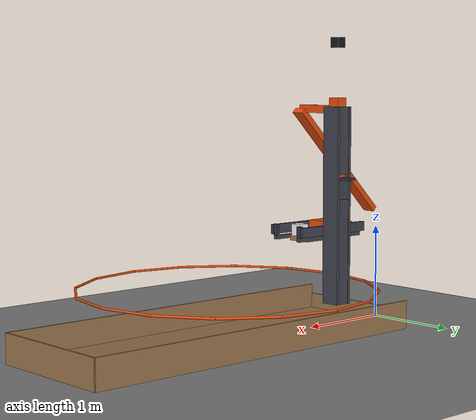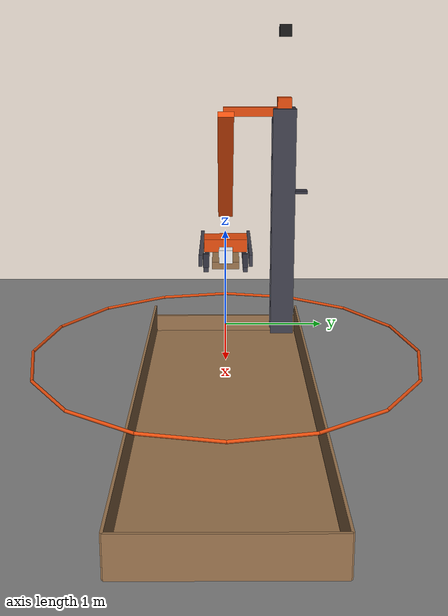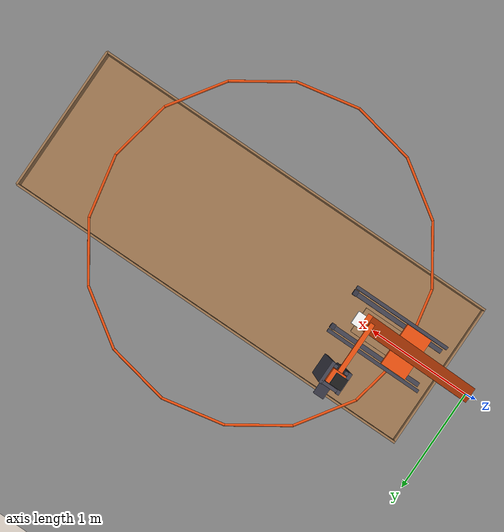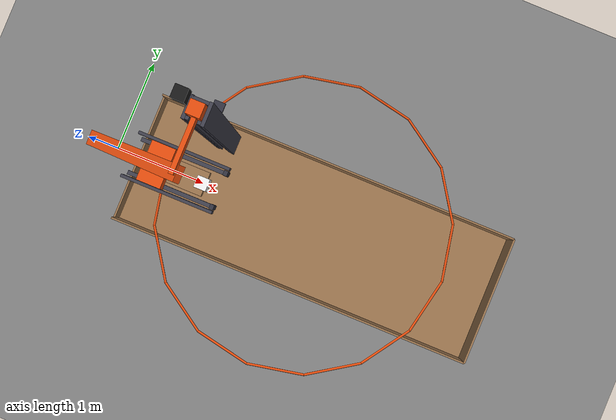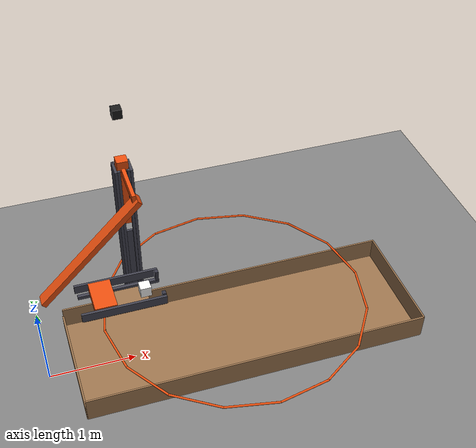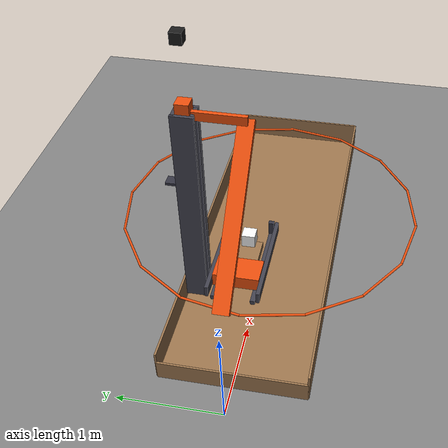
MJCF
<mujoco model="trigger_driven_guided_wedge">
  <compiler angle="radian"/>
  <option timestep="0.002"/>
  <worldbody>
    <geom name="floor" type="plane" size="10 10 0.1" friction="0.8 0.005 0.002"/>
    <body name="box">
      <geom name="box_base" type="box" pos="2.3 0 0.02" size="2 0.7 0.02" friction="1 0.02 0.01" solref="0.01 1" rgba="0.6 0.45 0.3 1"/>
      <geom name="box_near_wall" type="box" pos="0.3 0 0.1" size="0.01 0.7 0.1" friction="1 0.02 0.01" solref="0.01 1" rgba="0.6 0.45 0.3 1"/>
      <geom name="box_far_wall" type="box" pos="4.3 0 0.15" size="0.01 0.7 0.15" friction="1 0.02 0.01" solref="0.01 1" rgba="0.6 0.45 0.3 1"/>
      <geom name="box_left_wall" type="box" pos="2.3 0.7 0.15" size="2 0.01 0.15" friction="1 0.02 0.01" solref="0.01 1" rgba="0.6 0.45 0.3 1"/>
      <geom name="box_right_wall" type="box" pos="2.3 -0.7 0.15" size="2 0.01 0.15" friction="1 0.02 0.01" solref="0.01 1" rgba="0.6 0.45 0.3 1"/>
    </body>
    <body name="hoop">
      <geom name="hoop_00" type="capsule" size="0.012" fromto="3.712 0 0.55 3.59691 0.578617 0.55" rgba="0.9 0.3 0.05 1"/>
      <geom name="hoop_01" type="capsule" size="0.012" fromto="3.59691 0.578617 0.55 3.26915 1.06915 0.55" rgba="0.9 0.3 0.05 1"/>
      <geom name="hoop_02" type="capsule" size="0.012" fromto="3.26915 1.06915 0.55 2.77862 1.39691 0.55" rgba="0.9 0.3 0.05 1"/>
      <geom name="hoop_03" type="capsule" size="0.012" fromto="2.77862 1.39691 0.55 2.2 1.512 0.55" rgba="0.9 0.3 0.05 1"/>
      <geom name="hoop_04" type="capsule" size="0.012" fromto="2.2 1.512 0.55 1.62138 1.39691 0.55" rgba="0.9 0.3 0.05 1"/>
      <geom name="hoop_05" type="capsule" size="0.012" fromto="1.62138 1.39691 0.55 1.13085 1.06915 0.55" rgba="0.9 0.3 0.05 1"/>
      <geom name="hoop_06" type="capsule" size="0.012" fromto="1.13085 1.06915 0.55 0.803094 0.578617 0.55" rgba="0.9 0.3 0.05 1"/>
      <geom name="hoop_07" type="capsule" size="0.012" fromto="0.803094 0.578617 0.55 0.688 1.85167e-16 0.55" rgba="0.9 0.3 0.05 1"/>
      <geom name="hoop_08" type="capsule" size="0.012" fromto="0.688 1.85167e-16 0.55 0.803094 -0.578617 0.55" rgba="0.9 0.3 0.05 1"/>
      <geom name="hoop_09" type="capsule" size="0.012" fromto="0.803094 -0.578617 0.55 1.13085 -1.06915 0.55" rgba="0.9 0.3 0.05 1"/>
      <geom name="hoop_10" type="capsule" size="0.012" fromto="1.13085 -1.06915 0.55 1.62138 -1.39691 0.55" rgba="0.9 0.3 0.05 1"/>
      <geom name="hoop_11" type="capsule" size="0.012" fromto="1.62138 -1.39691 0.55 2.2 -1.512 0.55" rgba="0.9 0.3 0.05 1"/>
      <geom name="hoop_12" type="capsule" size="0.012" fromto="2.2 -1.512 0.55 2.77862 -1.39691 0.55" rgba="0.9 0.3 0.05 1"/>
      <geom name="hoop_13" type="capsule" size="0.012" fromto="2.77862 -1.39691 0.55 3.26915 -1.06915 0.55" rgba="0.9 0.3 0.05 1"/>
      <geom name="hoop_14" type="capsule" size="0.012" fromto="3.26915 -1.06915 0.55 3.59691 -0.578617 0.55" rgba="0.9 0.3 0.05 1"/>
      <geom name="hoop_15" type="capsule" size="0.012" fromto="3.59691 -0.578617 0.55 3.712 -3.70333e-16 0.55" rgba="0.9 0.3 0.05 1"/>
    </body>
    <body name="ledge">
      <geom name="ledge" type="box" pos="1 0 0.97" size="0.2 0.12 0.03" friction="0.15 0.005 0.0001" solref="0.01 1" rgba="0.6 0.45 0.3 1"/>
    </body>
    <body name="left track">
      <geom name="left track" type="box" pos="0.92 0.17 0.98" size="0.45 0.02 0.02" friction="0.04 0.005 0.0001" solref="0.01 1" rgba="0.25 0.25 0.3 1"/>
    </body>
    <body name="right track">
      <geom name="right track" type="box" pos="0.92 -0.17 0.98" size="0.45 0.02 0.02" friction="0.04 0.005 0.0001" solref="0.01 1" rgba="0.25 0.25 0.3 1"/>
    </body>
    <body name="left cart guide">
      <geom name="left cart guide" type="box" pos="0.91 0.218 1.06" size="0.46 0.015 0.05" friction="0.01 0.005 0.0001" solref="0.01 1" rgba="0.25 0.25 0.3 1"/>
    </body>
    <body name="right cart guide">
      <geom name="right cart guide" type="box" pos="0.91 -0.218 1.06" size="0.46 0.015 0.05" friction="0.01 0.005 0.0001" solref="0.01 1" rgba="0.25 0.25 0.3 1"/>
    </body>
    <body name="left cart stop">
      <geom name="left cart stop" type="box" pos="1.35 0.17 1.06" size="0.02 0.025 0.06" solref="0.01 1" rgba="0.2 0.2 0.25 1"/>
    </body>
    <body name="right cart stop">
      <geom name="right cart stop" type="box" pos="1.35 -0.17 1.06" size="0.02 0.025 0.06" solref="0.01 1" rgba="0.2 0.2 0.25 1"/>
    </body>
    <body name="cart" pos="0.72 0 1.06">
      <freejoint/>
      <geom name="cart" type="box" pos="0 0 0" size="0.12 0.2 0.06" mass="0.6" friction="0.04 0.001 0.001" solref="0.01 1" rgba="0.9 0.3 0.05 1"/>
    </body>
    <body name="block" pos="1.18 0 1.06">
      <freejoint/>
      <geom name="block" type="box" pos="0 0 0" size="0.06 0.06 0.06" mass="0.1" friction="0.15 0.01 0.005" solref="0.01 1" rgba="0.95 0.95 0.95 1"/>
    </body>
    <body name="near sleeve wall">
      <geom name="near sleeve wall" type="box" pos="1.07 0.5 1.35" size="0.015 0.1 1" friction="0.005 0.005 0.0001" solref="0.01 1" rgba="0.25 0.25 0.3 1"/>
    </body>
    <body name="far sleeve wall">
      <geom name="far sleeve wall" type="box" pos="1.23 0.5 1.35" size="0.015 0.1 1" friction="0.005 0.005 0.0001" solref="0.01 1" rgba="0.25 0.25 0.3 1"/>
    </body>
    <body name="near front sleeve rail">
      <geom name="near front sleeve rail" type="box" pos="1.1 0.42 1.35" size="0.015 0.015 1" friction="0.005 0.005 0.0001" solref="0.01 1" rgba="0.25 0.25 0.3 1"/>
    </body>
    <body name="far front sleeve rail">
      <geom name="far front sleeve rail" type="box" pos="1.2 0.42 1.35" size="0.015 0.015 1" friction="0.005 0.005 0.0001" solref="0.01 1" rgba="0.25 0.25 0.3 1"/>
    </body>
    <body name="lower rear sleeve wall">
      <geom name="lower rear sleeve wall" type="box" pos="1.15 0.58 0.885" size="0.08 0.015 0.535" friction="0.005 0.005 0.0001" solref="0.01 1" rgba="0.25 0.25 0.3 1"/>
    </body>
    <body name="upper rear sleeve wall">
      <geom name="upper rear sleeve wall" type="box" pos="1.15 0.58 2.01" size="0.08 0.015 0.34" friction="0.005 0.005 0.0001" solref="0.01 1" rgba="0.25 0.25 0.3 1"/>
    </body>
    <body name="wedge lower stop">
      <geom name="wedge lower stop" type="box" pos="1.15 0.5 0.59" size="0.06 0.06 0.03" solref="0.01 1" rgba="0.2 0.2 0.25 1"/>
    </body>
    <body name="release shelf" pos="1.15 0.71 1.6275">
      <joint name="release_hinge" type="hinge" pos="0 0 0" axis="1 0 0" limited="true" range="0 1.74533" stiffness="2" springref="-1.0472" damping="0.2" armature="0.02"/>
      <geom name="release shelf" type="box" pos="0 -0.09 0" size="0.05 0.09 0.0125" mass="0.03" friction="0.005 0.005 0.0001" solref="0.01 1" rgba="0.2 0.2 0.25 1"/>
    </body>
    <body name="wedge" pos="1.15 0.5 2.04">
      <freejoint/>
      <geom name="wedge" type="box" pos="0 0 0" size="0.06 0.06 0.4" mass="0.8" friction="0.005 0.001 0.001" solref="0.01 1" rgba="0.9 0.3 0.05 1"/>
      <geom name="wedge arm" type="box" pos="0 -0.25 0.28" size="0.02 0.27 0.04" mass="0.1" friction="0.005 0.005 0.0001" solref="0.01 1" rgba="0.9 0.3 0.05 1"/>
      <geom name="wedge slope" type="box" pos="-0.5 -0.5 -0.29" size="0.777817 0.07 0.03" euler="0 -0.785398 0" mass="0.25" friction="0.01 0.001 0.001" solref="0.01 1" rgba="0.9 0.3 0.05 1"/>
    </body>
    <body name="trigger" pos="1.15 0.5 2.99">
      <freejoint/>
      <geom name="trigger" type="box" pos="0 0 0" size="0.05 0.05 0.05" mass="2" friction="0.1 0.005 0.002" solref="0.01 1" rgba="0.1 0.1 0.1 1"/>
    </body>
  </worldbody>
  <keyframe>
    <key name="start" qpos="0.72 0 1.06 1 0 0 0 1.18 0 1.06 1 0 0 0 0 1.15 0.5 2.04 1 0 0 0 1.15 0.5 2.99 1 0 0 0" qvel="0 0 0 0 0 0 0 0 0 0 0 0 0 0 0 0 0 0 0 0 0 0 0 0 0"/>
  </keyframe>
</mujoco>
